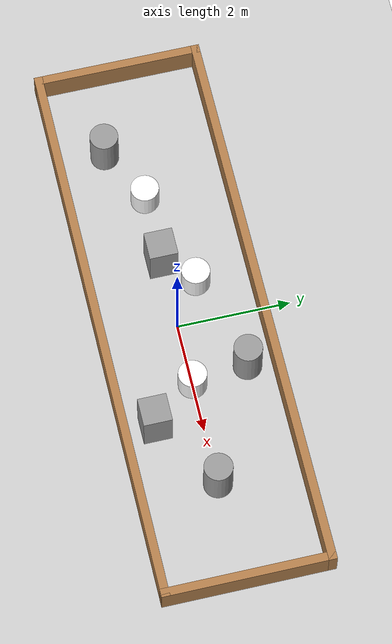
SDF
<sdf version="1.7">
 <world name="default">
  <light name="sun" type="directional">
   <pose>0 0 10 0 -0 0</pose>
   <diffuse>0.8 0.8 0.8 1</diffuse>
   <specular>0.2 0.2 0.2 1</specular>
   <attenuation>
    <range>1000</range>
    <constant>0.9</constant>
    <linear>0.01</linear>
    <quadratic>0.001</quadratic>
   </attenuation>
   <direction>-0.5 0.1 -0.9</direction>
   <spot><inner_angle>0</inner_angle><outer_angle>0</outer_angle><falloff>0</falloff></spot>
  </light>
  <model name="ground_plane">
   <static>1</static>
   <link name="link">
    <collision name="collision">
     <geometry><plane><normal>0 0 1</normal><size>100 100</size></plane></geometry>
     <surface>
      <contact><collide_bitmask>65535</collide_bitmask></contact>
      <friction><ode><mu>100</mu><mu2>50</mu2></ode></friction>
     </surface>
    </collision>
    <visual name="visual">
     <cast_shadows>0</cast_shadows>
     <geometry><plane><normal>0 0 1</normal><size>100 100</size></plane></geometry>
     <material>
      <script><uri>file://media/materials/scripts/gazebo.material</uri><name>Gazebo/Grey</name></script>
     </material>
    </visual>
   </link>
  </model>
  <gravity>0 0 -9.8</gravity>
  <magnetic_field>6e-06 2.3e-05 -4.2e-05</magnetic_field>
  <atmosphere type="adiabatic"/>
  <physics type="ode">
   <max_step_size>0.001</max_step_size>
   <real_time_factor>1</real_time_factor>
   <real_time_update_rate>1000</real_time_update_rate>
  </physics>
  <scene><ambient>0.4 0.4 0.4 1</ambient><background>0.7 0.7 0.7 1</background><shadows>1</shadows></scene>
  <audio><device>default</device></audio>
  <spherical_coordinates>
   <surface_model>EARTH_WGS84</surface_model>
   <latitude_deg>0</latitude_deg>
   <longitude_deg>0</longitude_deg>
   <elevation>0</elevation>
   <heading_deg>0</heading_deg>
  </spherical_coordinates>
  <model name="wall_3x10">
   <pose>-0.075 0.075 0 0 -0 0</pose>
   <link name="Wall_1">
    <collision name="Wall_1_Collision">
     <geometry><box><size>3 0.15 0.5</size></box></geometry>
     <pose>0 0 0.25 0 -0 0</pose>
    </collision>
    <visual name="Wall_1_Visual">
     <pose>0 0 0.25 0 -0 0</pose>
     <geometry><box><size>3 0.15 0.5</size></box></geometry>
     <material>
      <script><uri>file://media/materials/scripts/gazebo.material</uri><name>Gazebo/Wood</name></script>
      <ambient>1 1 1 1</ambient>
     </material>
     <meta><layer>0</layer></meta>
    </visual>
    <pose>-4.925 -0 0 0 -0 -1.5708</pose>
   </link>
   <link name="Wall_2">
    <collision name="Wall_2_Collision">
     <geometry><box><size>10 0.15 0.5</size></box></geometry>
     <pose>0 0 0.25 0 -0 0</pose>
    </collision>
    <visual name="Wall_2_Visual">
     <pose>0 0 0.25 0 -0 0</pose>
     <geometry><box><size>10 0.15 0.5</size></box></geometry>
     <material>
      <script><uri>file://media/materials/scripts/gazebo.material</uri><name>Gazebo/Wood</name></script>
      <ambient>1 1 1 1</ambient>
     </material>
     <meta><layer>0</layer></meta>
    </visual>
    <pose>0 -1.425 0 0 -0 0</pose>
   </link>
   <link name="Wall_3">
    <collision name="Wall_3_Collision">
     <geometry><box><size>3 0.15 0.5</size></box></geometry>
     <pose>0 0 0.25 0 -0 0</pose>
    </collision>
    <visual name="Wall_3_Visual">
     <pose>0 0 0.25 0 -0 0</pose>
     <geometry><box><size>3 0.15 0.5</size></box></geometry>
     <material>
      <script><uri>file://media/materials/scripts/gazebo.material</uri><name>Gazebo/Wood</name></script>
      <ambient>1 1 1 1</ambient>
     </material>
     <meta><layer>0</layer></meta>
    </visual>
    <pose>4.925 -0 0 0 -0 1.5708</pose>
   </link>
   <link name="Wall_4">
    <collision name="Wall_4_Collision">
     <geometry><box><size>10 0.15 0.5</size></box></geometry>
     <pose>0 0 0.25 0 -0 0</pose>
    </collision>
    <visual name="Wall_4_Visual">
     <pose>0 0 0.25 0 -0 0</pose>
     <geometry><box><size>10 0.15 0.5</size></box></geometry>
     <material>
      <script><uri>file://media/materials/scripts/gazebo.material</uri><name>Gazebo/Wood</name></script>
      <ambient>1 1 1 1</ambient>
     </material>
     <meta><layer>0</layer></meta>
    </visual>
    <pose>0 1.425 0 0 -0 3.14159</pose>
   </link>
   <static>1</static>
  </model>
  <model name="unit_cylinder">
   <link name="link">
    <inertial>
     <mass>1</mass>
     <inertia><ixx>0.145833</ixx><ixy>0</ixy><ixz>0</ixz><iyy>0.145833</iyy><iyz>0</iyz><izz>0.125</izz></inertia>
    </inertial>
    <pose>0 -0 -0.1 0 -0 0</pose>
    <visual name="visual">
     <geometry><cylinder><radius>0.25</radius><length>0.8</length></cylinder></geometry>
     <material>
      <script><name>Gazebo/Grey</name><uri>file://media/materials/scripts/gazebo.material</uri></script>
      <shader type="pixel"><normal_map>__default__</normal_map></shader>
      <ambient>0.1 0.1 0.1 1</ambient>
      <diffuse>0.7 0.7 0.7 1</diffuse>
      <specular>0.01 0.01 0.01 1</specular>
      <emissive>0 0 0 1</emissive>
     </material>
    </visual>
    <collision name="collision">
     <geometry><cylinder><radius>0.25</radius><length>0.8</length></cylinder></geometry>
     <surface>
      <friction>
       <ode><mu>1</mu><mu2>1</mu2><fdir1>0 0 0</fdir1><slip1>0</slip1><slip2>0</slip2></ode>
       <torsional>
        <coefficient>1</coefficient>
        <patch_radius>0</patch_radius>
        <surface_radius>0</surface_radius>
        <use_patch_radius>1</use_patch_radius>
        <ode><slip>0</slip></ode>
       </torsional>
      </friction>
      <bounce><restitution_coefficient>0</restitution_coefficient><threshold>1e+06</threshold></bounce>
      <contact>
       <collide_without_contact>0</collide_without_contact>
       <collide_without_contact_bitmask>1</collide_without_contact_bitmask>
       <collide_bitmask>1</collide_bitmask>
       <ode>
        <soft_cfm>0</soft_cfm>
        <soft_erp>0.2</soft_erp>
        <kp>1e+13</kp>
        <kd>1</kd>
        <max_vel>0.01</max_vel>
        <min_depth>0</min_depth>
       </ode>
       <bullet>
        <split_impulse>1</split_impulse>
        <split_impulse_penetration_threshold>-0.01</split_impulse_penetration_threshold>
        <soft_cfm>0</soft_cfm>
        <soft_erp>0.2</soft_erp>
        <kp>1e+13</kp>
        <kd>1</kd>
       </bullet>
      </contact>
     </surface>
    </collision>
   </link>
   <static>0</static>
   <pose>3 -0 0.499991 0 -0 0</pose>
  </model>
  <model name="unit_cylinder_0">
   <link name="link">
    <inertial>
     <mass>1</mass>
     <inertia><ixx>0.145833</ixx><ixy>0</ixy><ixz>0</ixz><iyy>0.145833</iyy><iyz>0</iyz><izz>0.125</izz></inertia>
    </inertial>
    <pose>0 -0 -0.1 0 -0 0</pose>
    <visual name="visual">
     <geometry><cylinder><radius>0.25</radius><length>0.8</length></cylinder></geometry>
     <material>
      <script><name>Gazebo/Grey</name><uri>file://media/materials/scripts/gazebo.material</uri></script>
      <shader type="pixel"><normal_map>__default__</normal_map></shader>
      <ambient>0.1 0.1 0.1 1</ambient>
      <diffuse>0.7 0.7 0.7 1</diffuse>
      <specular>0.01 0.01 0.01 1</specular>
      <emissive>0 0 0 1</emissive>
     </material>
    </visual>
    <collision name="collision">
     <geometry><cylinder><radius>0.25</radius><length>0.8</length></cylinder></geometry>
     <surface>
      <friction>
       <ode><mu>1</mu><mu2>1</mu2><fdir1>0 0 0</fdir1><slip1>0</slip1><slip2>0</slip2></ode>
       <torsional>
        <coefficient>1</coefficient>
        <patch_radius>0</patch_radius>
        <surface_radius>0</surface_radius>
        <use_patch_radius>1</use_patch_radius>
        <ode><slip>0</slip></ode>
       </torsional>
      </friction>
      <bounce><restitution_coefficient>0</restitution_coefficient><threshold>1e+06</threshold></bounce>
      <contact>
       <collide_without_contact>0</collide_without_contact>
       <collide_without_contact_bitmask>1</collide_without_contact_bitmask>
       <collide_bitmask>1</collide_bitmask>
       <ode>
        <soft_cfm>0</soft_cfm>
        <soft_erp>0.2</soft_erp>
        <kp>1e+13</kp>
        <kd>1</kd>
        <max_vel>0.01</max_vel>
        <min_depth>0</min_depth>
       </ode>
       <bullet>
        <split_impulse>1</split_impulse>
        <split_impulse_penetration_threshold>-0.01</split_impulse_penetration_threshold>
        <soft_cfm>0</soft_cfm>
        <soft_erp>0.2</soft_erp>
        <kp>1e+13</kp>
        <kd>1</kd>
       </bullet>
      </contact>
     </surface>
    </collision>
   </link>
   <static>0</static>
   <pose>1 1 0.499991 0 -0 0</pose>
  </model>
  <model name="unit_box">
   <link name="link">
    <inertial>
     <mass>1</mass>
     <inertia>
      <ixx>0.166667</ixx>
      <ixy>0</ixy>
      <ixz>0</ixz>
      <iyy>0.166667</iyy>
      <iyz>0</iyz>
      <izz>0.166667</izz>
     </inertia>
    </inertial>
    <pose>-0 -0 -0.1 0 -0 0</pose>
    <visual name="visual">
     <geometry><box><size>0.5 0.5 0.8</size></box></geometry>
     <material>
      <script><name>Gazebo/Grey</name><uri>file://media/materials/scripts/gazebo.material</uri></script>
      <shader type="pixel"><normal_map>__default__</normal_map></shader>
      <ambient>0.1 0.1 0.1 1</ambient>
      <diffuse>0.7 0.7 0.7 1</diffuse>
      <specular>0.01 0.01 0.01 1</specular>
      <emissive>0 0 0 1</emissive>
     </material>
    </visual>
    <collision name="collision">
     <geometry><box><size>0.5 0.5 0.8</size></box></geometry>
     <surface>
      <friction>
       <ode><mu>1</mu><mu2>1</mu2><fdir1>0 0 0</fdir1><slip1>0</slip1><slip2>0</slip2></ode>
       <torsional>
        <coefficient>1</coefficient>
        <patch_radius>0</patch_radius>
        <surface_radius>0</surface_radius>
        <use_patch_radius>1</use_patch_radius>
        <ode><slip>0</slip></ode>
       </torsional>
      </friction>
      <bounce><restitution_coefficient>0</restitution_coefficient><threshold>1e+06</threshold></bounce>
      <contact>
       <collide_without_contact>0</collide_without_contact>
       <collide_without_contact_bitmask>1</collide_without_contact_bitmask>
       <collide_bitmask>1</collide_bitmask>
       <ode>
        <soft_cfm>0</soft_cfm>
        <soft_erp>0.2</soft_erp>
        <kp>1e+13</kp>
        <kd>1</kd>
        <max_vel>0.01</max_vel>
        <min_depth>0</min_depth>
       </ode>
       <bullet>
        <split_impulse>1</split_impulse>
        <split_impulse_penetration_threshold>-0.01</split_impulse_penetration_threshold>
        <soft_cfm>0</soft_cfm>
        <soft_erp>0.2</soft_erp>
        <kp>1e+13</kp>
        <kd>1</kd>
       </bullet>
      </contact>
     </surface>
    </collision>
   </link>
   <static>0</static>
   <pose>1.75 -0.8 0.5 0 -0 0</pose>
  </model>
  <model name="unit_box_0">
   <link name="link">
    <inertial>
     <mass>1</mass>
     <inertia>
      <ixx>0.166667</ixx>
      <ixy>0</ixy>
      <ixz>0</ixz>
      <iyy>0.166667</iyy>
      <iyz>0</iyz>
      <izz>0.166667</izz>
     </inertia>
    </inertial>
    <pose>-0 -0 -0.1 0 -0 0</pose>
    <visual name="visual">
     <geometry><box><size>0.5 0.5 0.8</size></box></geometry>
     <material>
      <script><name>Gazebo/Grey</name><uri>file://media/materials/scripts/gazebo.material</uri></script>
      <shader type="pixel"><normal_map>__default__</normal_map></shader>
      <ambient>0.1 0.1 0.1 1</ambient>
      <diffuse>0.7 0.7 0.7 1</diffuse>
      <specular>0.01 0.01 0.01 1</specular>
      <emissive>0 0 0 1</emissive>
     </material>
    </visual>
    <collision name="collision">
     <geometry><box><size>0.5 0.5 0.8</size></box></geometry>
     <surface>
      <friction>
       <ode><mu>1</mu><mu2>1</mu2><fdir1>0 0 0</fdir1><slip1>0</slip1><slip2>0</slip2></ode>
       <torsional>
        <coefficient>1</coefficient>
        <patch_radius>0</patch_radius>
        <surface_radius>0</surface_radius>
        <use_patch_radius>1</use_patch_radius>
        <ode><slip>0</slip></ode>
       </torsional>
      </friction>
      <bounce><restitution_coefficient>0</restitution_coefficient><threshold>1e+06</threshold></bounce>
      <contact>
       <collide_without_contact>0</collide_without_contact>
       <collide_without_contact_bitmask>1</collide_without_contact_bitmask>
       <collide_bitmask>1</collide_bitmask>
       <ode>
        <soft_cfm>0</soft_cfm>
        <soft_erp>0.2</soft_erp>
        <kp>1e+13</kp>
        <kd>1</kd>
        <max_vel>0.01</max_vel>
        <min_depth>0</min_depth>
       </ode>
       <bullet>
        <split_impulse>1</split_impulse>
        <split_impulse_penetration_threshold>-0.01</split_impulse_penetration_threshold>
        <soft_cfm>0</soft_cfm>
        <soft_erp>0.2</soft_erp>
        <kp>1e+13</kp>
        <kd>1</kd>
       </bullet>
      </contact>
     </surface>
    </collision>
   </link>
   <static>0</static>
   <pose>-1.25 0 0.5 0 -0 0</pose>
  </model>
  <model name="unit_cylinder_1">
   <link name="link">
    <inertial>
     <mass>1</mass>
     <inertia><ixx>0.145833</ixx><ixy>0</ixy><ixz>0</ixz><iyy>0.145833</iyy><iyz>0</iyz><izz>0.125</izz></inertia>
    </inertial>
    <pose>0 -0 -0.1 0 -0 0</pose>
    <visual name="visual">
     <geometry><cylinder><radius>0.25</radius><length>0.8</length></cylinder></geometry>
     <material>
      <script><name>Gazebo/Grey</name><uri>file://media/materials/scripts/gazebo.material</uri></script>
      <shader type="pixel"><normal_map>__default__</normal_map></shader>
      <ambient>0.1 0.1 0.1 1</ambient>
      <diffuse>0.7 0.7 0.7 1</diffuse>
      <specular>0.01 0.01 0.01 1</specular>
      <emissive>0 0 0 1</emissive>
     </material>
    </visual>
    <collision name="collision">
     <geometry><cylinder><radius>0.25</radius><length>0.8</length></cylinder></geometry>
     <surface>
      <friction>
       <ode><mu>1</mu><mu2>1</mu2><fdir1>0 0 0</fdir1><slip1>0</slip1><slip2>0</slip2></ode>
       <torsional>
        <coefficient>1</coefficient>
        <patch_radius>0</patch_radius>
        <surface_radius>0</surface_radius>
        <use_patch_radius>1</use_patch_radius>
        <ode><slip>0</slip></ode>
       </torsional>
      </friction>
      <bounce><restitution_coefficient>0</restitution_coefficient><threshold>1e+06</threshold></bounce>
      <contact>
       <collide_without_contact>0</collide_without_contact>
       <collide_without_contact_bitmask>1</collide_without_contact_bitmask>
       <collide_bitmask>1</collide_bitmask>
       <ode>
        <soft_cfm>0</soft_cfm>
        <soft_erp>0.2</soft_erp>
        <kp>1e+13</kp>
        <kd>1</kd>
        <max_vel>0.01</max_vel>
        <min_depth>0</min_depth>
       </ode>
       <bullet>
        <split_impulse>1</split_impulse>
        <split_impulse_penetration_threshold>-0.01</split_impulse_penetration_threshold>
        <soft_cfm>0</soft_cfm>
        <soft_erp>0.2</soft_erp>
        <kp>1e+13</kp>
        <kd>1</kd>
       </bullet>
      </contact>
     </surface>
    </collision>
   </link>
   <static>0</static>
   <pose>-3.5 -0.5 0.499992 -1e-06 1e-06 0</pose>
  </model>
  <model name="moving_white_cylinder">
   <link name="link">
    <inertial>
     <mass>1</mass>
     <inertia><ixx>0.145833</ixx><ixy>0</ixy><ixz>0</ixz><iyy>0.145833</iyy><iyz>0</iyz><izz>0.125</izz></inertia>
    </inertial>
    <visual name="visual">
     <geometry><cylinder><radius>0.25</radius><length>0.5</length></cylinder></geometry>
     <material>
      <script><name>Gazebo/Pedestrian</name><uri>file://media/materials/scripts/gazebo.material</uri></script>
      <shader type="pixel"><normal_map>__default__</normal_map></shader>
      <ambient>0.98 0.98 0.98 1</ambient>
      <diffuse>0.976 0.976 0.976 1</diffuse>
      <specular>0.976 0.976 0.976 1</specular>
      <emissive>0.976 0.976 0.976 1</emissive>
     </material>
     <pose>0 0 -0.25 0 -0 0</pose>
    </visual>
    <collision name="collision">
     <pose>0 0 -0.25 0 -0 0</pose>
     <geometry><cylinder><radius>0.25</radius><length>0.5</length></cylinder></geometry>
     <surface>
      <friction>
       <ode><mu>1</mu><mu2>1</mu2><fdir1>0 0 0</fdir1><slip1>0</slip1><slip2>0</slip2></ode>
       <torsional>
        <coefficient>1</coefficient>
        <patch_radius>0</patch_radius>
        <surface_radius>0</surface_radius>
        <use_patch_radius>1</use_patch_radius>
        <ode><slip>0</slip></ode>
       </torsional>
      </friction>
      <bounce><restitution_coefficient>0</restitution_coefficient><threshold>1e+06</threshold></bounce>
      <contact>
       <collide_without_contact>0</collide_without_contact>
       <collide_without_contact_bitmask>1</collide_without_contact_bitmask>
       <collide_bitmask>1</collide_bitmask>
       <ode>
        <soft_cfm>0</soft_cfm>
        <soft_erp>0.2</soft_erp>
        <kp>1e+13</kp>
        <kd>1</kd>
        <max_vel>0.01</max_vel>
        <min_depth>0</min_depth>
       </ode>
       <bullet>
        <split_impulse>1</split_impulse>
        <split_impulse_penetration_threshold>-0.01</split_impulse_penetration_threshold>
        <soft_cfm>0</soft_cfm>
        <soft_erp>0.2</soft_erp>
        <kp>1e+13</kp>
        <kd>1</kd>
       </bullet>
      </contact>
     </surface>
    </collision>
   </link>
   <static>0</static>
   <pose>1.125 0 0.499992 0 -0 0</pose>
   <plugin name="dyn_obst_plugin" filename="libdyn_obst_plugin.so">
    <axis>y</axis>
    <angle>30.96</angle>
    <amplitude>0.75</amplitude>
    <frequency>1.0</frequency>
   </plugin>
  </model>
  <model name="moving_white_cylinder_0">
   <link name="link">
    <inertial>
     <mass>1</mass>
     <inertia><ixx>0.145833</ixx><ixy>0</ixy><ixz>0</ixz><iyy>0.145833</iyy><iyz>0</iyz><izz>0.125</izz></inertia>
    </inertial>
    <visual name="visual">
     <geometry><cylinder><radius>0.25</radius><length>0.5</length></cylinder></geometry>
     <material>
      <script><name>Gazebo/Pedestrian</name><uri>file://media/materials/scripts/gazebo.material</uri></script>
      <shader type="pixel"><normal_map>__default__</normal_map></shader>
      <ambient>0.98 0.98 0.98 1</ambient>
      <diffuse>0.976 0.976 0.976 1</diffuse>
      <specular>0.976 0.976 0.976 1</specular>
      <emissive>0.976 0.976 0.976 1</emissive>
     </material>
     <pose>0 0 -0.25 0 -0 0</pose>
    </visual>
    <collision name="collision">
     <pose>0 0 -0.25 0 -0 0</pose>
     <geometry><cylinder><radius>0.25</radius><length>0.5</length></cylinder></geometry>
     <surface>
      <friction>
       <ode><mu>1</mu><mu2>1</mu2><fdir1>0 0 0</fdir1><slip1>0</slip1><slip2>0</slip2></ode>
       <torsional>
        <coefficient>1</coefficient>
        <patch_radius>0</patch_radius>
        <surface_radius>0</surface_radius>
        <use_patch_radius>1</use_patch_radius>
        <ode><slip>0</slip></ode>
       </torsional>
      </friction>
      <bounce><restitution_coefficient>0</restitution_coefficient><threshold>1e+06</threshold></bounce>
      <contact>
       <collide_without_contact>0</collide_without_contact>
       <collide_without_contact_bitmask>1</collide_without_contact_bitmask>
       <collide_bitmask>1</collide_bitmask>
       <ode>
        <soft_cfm>0</soft_cfm>
        <soft_erp>0.2</soft_erp>
        <kp>1e+13</kp>
        <kd>1</kd>
        <max_vel>0.01</max_vel>
        <min_depth>0</min_depth>
       </ode>
       <bullet>
        <split_impulse>1</split_impulse>
        <split_impulse_penetration_threshold>-0.01</split_impulse_penetration_threshold>
        <soft_cfm>0</soft_cfm>
        <soft_erp>0.2</soft_erp>
        <kp>1e+13</kp>
        <kd>1</kd>
       </bullet>
      </contact>
     </surface>
    </collision>
   </link>
   <static>0</static>
   <pose>-2.5 0 0.499992 -1e-06 1e-06 1e-06</pose>
   <plugin name="dyn_obst_plugin" filename="libdyn_obst_plugin.so">
    <axis>y</axis>
    <amplitude>0.8</amplitude>
    <frequency>-1.0</frequency>
   </plugin>
  </model>
  <model name="moving_white_cylinder_1">
   <link name="link">
    <inertial>
     <mass>1</mass>
     <inertia><ixx>0.145833</ixx><ixy>0</ixy><ixz>0</ixz><iyy>0.145833</iyy><iyz>0</iyz><izz>0.125</izz></inertia>
    </inertial>
    <visual name="visual">
     <geometry><cylinder><radius>0.25</radius><length>0.5</length></cylinder></geometry>
     <material>
      <script><name>Gazebo/Pedestrian</name><uri>file://media/materials/scripts/gazebo.material</uri></script>
      <shader type="pixel"><normal_map>__default__</normal_map></shader>
      <ambient>0.98 0.98 0.98 1</ambient>
      <diffuse>0.976 0.976 0.976 1</diffuse>
      <specular>0.976 0.976 0.976 1</specular>
      <emissive>0.976 0.976 0.976 1</emissive>
     </material>
     <pose>0 0 -0.25 0 -0 0</pose>
    </visual>
    <collision name="collision">
     <pose>0 0 -0.25 0 -0 0</pose>
     <geometry><cylinder><radius>0.25</radius><length>0.5</length></cylinder></geometry>
     <surface>
      <friction>
       <ode><mu>1</mu><mu2>1</mu2><fdir1>0 0 0</fdir1><slip1>0</slip1><slip2>0</slip2></ode>
       <torsional>
        <coefficient>1</coefficient>
        <patch_radius>0</patch_radius>
        <surface_radius>0</surface_radius>
        <use_patch_radius>1</use_patch_radius>
        <ode><slip>0</slip></ode>
       </torsional>
      </friction>
      <bounce><restitution_coefficient>0</restitution_coefficient><threshold>1e+06</threshold></bounce>
      <contact>
       <collide_without_contact>0</collide_without_contact>
       <collide_without_contact_bitmask>1</collide_without_contact_bitmask>
       <collide_bitmask>1</collide_bitmask>
       <ode>
        <soft_cfm>0</soft_cfm>
        <soft_erp>0.2</soft_erp>
        <kp>1e+13</kp>
        <kd>1</kd>
        <max_vel>0.01</max_vel>
        <min_depth>0</min_depth>
       </ode>
       <bullet>
        <split_impulse>1</split_impulse>
        <split_impulse_penetration_threshold>-0.01</split_impulse_penetration_threshold>
        <soft_cfm>0</soft_cfm>
        <soft_erp>0.2</soft_erp>
        <kp>1e+13</kp>
        <kd>1</kd>
       </bullet>
      </contact>
     </surface>
    </collision>
   </link>
   <static>0</static>
   <pose>-0.75 0.5 0.499992 -1e-06 1e-06 1e-06</pose>
   <plugin name="dyn_obst_plugin" filename="libdyn_obst_plugin.so">
    <axis>y</axis>
    <angle>146.31</angle>
    <amplitude>0.5</amplitude>
    <frequency>-1.0</frequency>
   </plugin>
  </model>
 </world>
</sdf>
